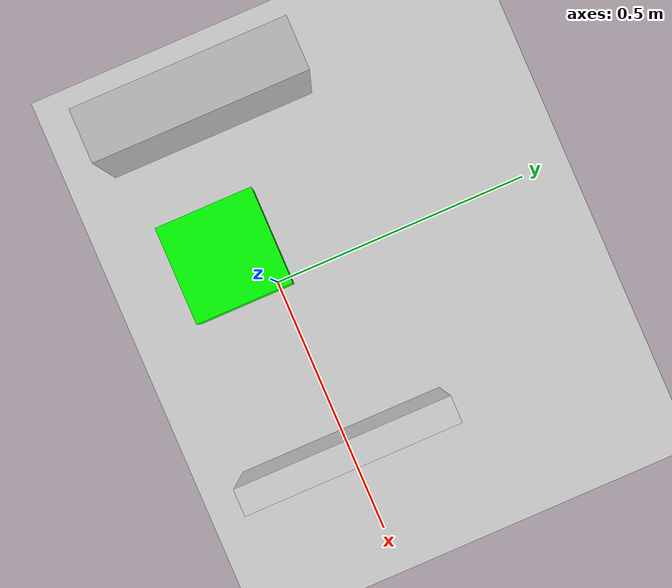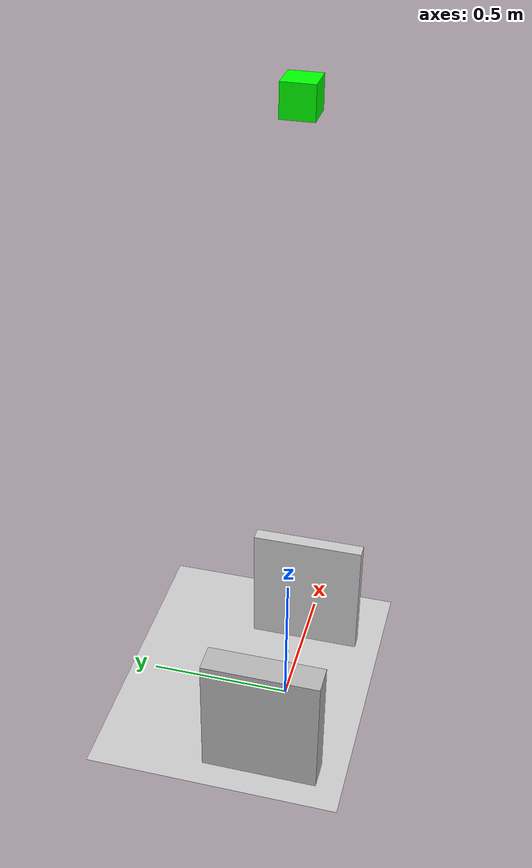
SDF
<sdf version="1.6">
 <world name="default">
  <light name="sun" type="directional">
   <cast_shadows>0</cast_shadows>
   <pose>0 0 10 0 -0 0</pose>
   <diffuse>0.8 0.8 0.8 1</diffuse>
   <specular>0.2 0.2 0.2 1</specular>
   <attenuation>
    <range>1000</range>
    <constant>0.9</constant>
    <linear>0.01</linear>
    <quadratic>0.001</quadratic>
   </attenuation>
   <direction>-0.5 0.1 -0.9</direction>
  </light>
  <include><uri>model://ground_plane</uri></include>
  <gravity>0 0 -9.8</gravity>
  <magnetic_field>6e-06 2.3e-05 -4.2e-05</magnetic_field>
  <atmosphere type="adiabatic"/>
  <physics default="0" name="default_physics" type="ode">
   <max_step_size>0.001</max_step_size>
   <real_time_factor>1</real_time_factor>
   <real_time_update_rate>1000</real_time_update_rate>
  </physics>
  <scene><ambient>0.4 0.4 0.4 1</ambient><background>0.7 0.7 0.7 1</background><shadows>0</shadows></scene>
  <spherical_coordinates>
   <surface_model>EARTH_WGS84</surface_model>
   <latitude_deg>0</latitude_deg>
   <longitude_deg>0</longitude_deg>
   <elevation>0</elevation>
   <heading_deg>0</heading_deg>
  </spherical_coordinates>
  <model name="water_0">
   <pose>0 0 0.2 0 0 0</pose>
   <static>true</static>
   <link name="link_">
    <collision name="collision_water_0">
     <geometry><mesh><uri>model://test_world/models/water_0.dae</uri></mesh></geometry>
    </collision>
    <visual name="visual_water_0">
     <geometry><mesh><uri>model://test_world/models/water_0.dae</uri></mesh></geometry>
    </visual>
   </link>
  </model>
  <model name="water_1">
   <pose>0 0 0.2 0 0 0</pose>
   <static>true</static>
   <link name="link_">
    <collision name="collision_water_1">
     <geometry><mesh><uri>model://test_world/models/water_1.dae</uri></mesh></geometry>
    </collision>
    <visual name="visual_water_1">
     <geometry><mesh><uri>model://test_world/models/water_1.dae</uri></mesh></geometry>
    </visual>
   </link>
  </model>
  <model name="source_0">
   <pose>0 0 0.2 0 0 0</pose>
   <static>true</static>
   <link name="link_source_0"/>
   <model name="radiation_source_source_0">
    <static>true</static>
    <link name="link_radiation_source_source_0">
     <visual name="visual_radiation_source_source_0_0">
      <geometry><box><size>0.01 0.01 0.01</size></box></geometry>
      <material><ambient>1 0.0  0 1.0</ambient><diffuse>1 0.0  0 1.0</diffuse></material>
     </visual>
     <visual name="visual_radiation_source_source_0_1">
      <pose>0 0 2.0 0 0 0</pose>
      <geometry><box><size>0.1 0.1 0.1</size></box></geometry>
      <material><ambient>0 1.0  0 1.0</ambient><diffuse>0 1.0  0 1.0</diffuse></material>
     </visual>
     <sensor name="radiation_source_source_0" type="radiation_source">
      <always_on>1</always_on>
      <update_rate>1000.0</update_rate>
      <topic>source_0/gamma</topic>
      <plugin filename="libradiation_source_plugin.so" name="radiation_source_plugin"/>
     </sensor>
    </link>
   </model>
  </model>
 </world>
</sdf>
